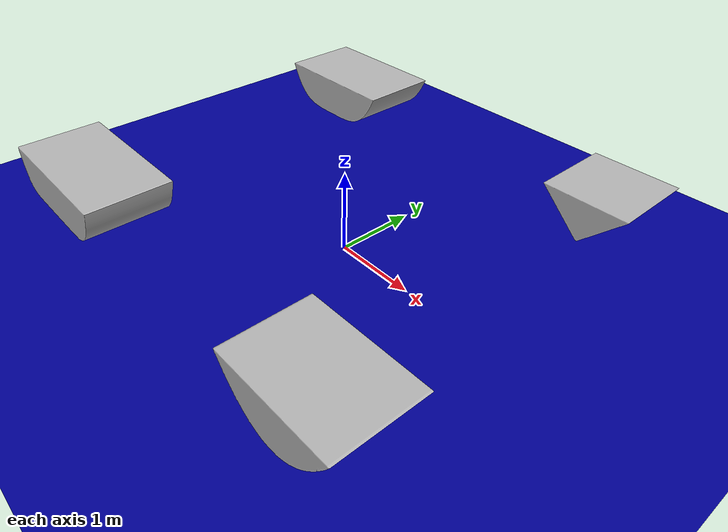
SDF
<?xml version="1.0" encoding="utf-8"?>
<!-- |    This document was autogenerated by xacro from buoyancy_plugin_demo.world.xacro | -->
<!-- |    EDITING THIS FILE BY HAND IS NOT RECOMMENDED                                 | -->
<!-- World containing buoyancy test models -->
<sdf version="1.6">
  <world name="buoyancy_test">
    <scene>
      <grid>false</grid>
      <origin_visual>false</origin_visual>
      <ambient>0.6 0.6 0.6 1</ambient>
      <background>0.8 0.8 0.8 1</background>
    </scene>
    <!-- A global light source -->
    <include>
      <uri>model://sun</uri>
    </include>
    <gui fullscreen="0">
      <camera name="user_camera">
        <pose frame="">4.84693 -4.51466 1.77033 0 0.275643 2.35619</pose>
        <view_controller>orbit</view_controller>
      </camera>
    </gui>
    <!-- water level for visual reference at z = 0-->
    <model name="plane">
      <static>true</static>
      <pose>0.8 0.8 0 0 0 0</pose>
      <link name="link">
        <visual name="visual">
          <geometry>
            <plane>
              <normal>0 0 1</normal>
              <size>20 20</size>
            </plane>
          </geometry>
          <material>
            <ambient>0.0 0.0 0.6 1</ambient>
          </material>
        </visual>
      </link>
    </model>
    <model name="shape_1_boat_mathematica">
	    <!-- AVS is about 92 degrees (as calculated by John's code) -->
      <pose>2 2 0.5 0 0 0</pose>
      <static>False</static>
      <link name="link">
        <visual name="visual">
          <geometry>
            <mesh>
		    <uri>model://bod/meshes/shape_1_boat_mathematica.stl</uri>
            </mesh>
          </geometry>
        </visual>
        <collision name="collision">
          <geometry>
            <mesh>
		    <uri>model://bod/meshes/shape_1_boat_mathematica.stl</uri>
            </mesh>
          </geometry>
        </collision>
        <inertial>
		<mass>62.44425</mass>
		<pose>0 0 0.333586 0 0 0</pose>
          <inertia>
            <ixx>6.0645</ixx>
            <ixy>0</ixy>
            <ixz>0</ixz>
            <iyy>3.466</iyy>
            <iyz>0</iyz>
            <izz>7.8047</izz>
          </inertia>
        </inertial>
      </link>
      <plugin filename="libbuoyancy_gazebo_plugin.so" name="BuoyancyPlugin">
        <fluid_density>1000</fluid_density>
        <fluid_level>0.0</fluid_level>
        <linear_drag>5</linear_drag>
        <angular_drag>2</angular_drag>
        <buoyancy name="buoyancy">
          <link_name>link</link_name>
          <geometry>
            <mesh>
		    <uri>model://bod/meshes/shape_1_boat_mathematica.stl</uri>
            </mesh>
          </geometry>
        </buoyancy>
      </plugin>
    </model>
    <model name="shape_2_boat_mathematica">
      <pose>2 -2 0.5 0 0 0</pose>
      <static>False</static>
      <link name="link">
        <visual name="visual">
          <geometry>
            <mesh>
		    <uri>model://bod/meshes/shape_2_boat_mathematica.stl</uri>
            </mesh>
          </geometry>
        </visual>
        <collision name="collision">
          <geometry>
            <mesh>
		    <uri>model://bod/meshes/shape_2_boat_mathematica.stl</uri>
            </mesh>
          </geometry>
        </collision>
        <inertial>
		<mass>117.787</mass>
		<pose>0 0 0.300031 0 0 0</pose>
          <inertia>
            <ixx>11.82975</ixx>
            <ixy>0</ixy>
            <ixz>0</ixz>
            <iyy>13.7865</iyy>
            <iyz>0</iyz>
            <izz>21.58125</izz>
          </inertia>
        </inertial>
      </link>
      <plugin filename="libbuoyancy_gazebo_plugin.so" name="BuoyancyPlugin">
        <fluid_density>1000</fluid_density>
        <fluid_level>0.0</fluid_level>
        <linear_drag>5</linear_drag>
        <angular_drag>2</angular_drag>
        <buoyancy name="buoyancy">
          <link_name>link</link_name>
          <geometry>
            <mesh>
		    <uri>model://bod/meshes/shape_2_boat_mathematica.stl</uri>
            </mesh>
          </geometry>
        </buoyancy>
      </plugin>
    </model>
    <model name="shape_4_boat_mathematica">
      <pose>-2 2 0.5 0 0 0</pose>
      <static>False</static>
      <link name="link">
        <visual name="visual">
          <geometry>
            <mesh>
		    <uri>model://bod/meshes/shape_4_boat_mathematica.stl</uri>
            </mesh>
          </geometry>
        </visual>
        <collision name="collision">
          <geometry>
            <mesh>
		    <uri>model://bod/meshes/shape_4_boat_mathematica.stl</uri>
            </mesh>
          </geometry>
        </collision>
        <inertial>
		<mass>168.1105</mass>
		<pose>0 0 0.277797 0 0 0</pose>
          <inertia>
            <ixx>17.1965</ixx>
            <ixy>0</ixy>
            <ixz>0</ixz>
            <iyy>31.47625</iyy>
            <iyz>0</iyz>
            <izz>42.29</izz>
          </inertia>
        </inertial>
      </link>
      <plugin filename="libbuoyancy_gazebo_plugin.so" name="BuoyancyPlugin">
        <fluid_density>1000</fluid_density>
        <fluid_level>0.0</fluid_level>
        <linear_drag>5</linear_drag>
        <angular_drag>2</angular_drag>
        <buoyancy name="buoyancy">
          <link_name>link</link_name>
          <geometry>
            <mesh>
		    <uri>model://bod/meshes/shape_4_boat_mathematica.stl</uri>
            </mesh>
          </geometry>
        </buoyancy>
      </plugin>
    </model>
    <model name="shape_8_boat_mathematica">
      <pose>-2 -2 0.5 0 0 0</pose>
      <static>False</static>
      <link name="link">
        <visual name="visual">
          <geometry>
            <mesh>
		    <uri>model://bod/meshes/shape_8_boat_mathematica.stl</uri>
            </mesh>
          </geometry>
        </visual>
        <collision name="collision">
          <geometry>
            <mesh>
		    <uri>model://bod/meshes/shape_8_boat_mathematica.stl</uri>
            </mesh>
          </geometry>
        </collision>
        <inertial>
		<mass>203.699</mass>
		<pose>0 0 0.264741 0 0 0</pose>
          <inertia>
            <ixx>21.0285</ixx>
            <ixy>0</ixy>
            <ixz>0</ixz>
            <iyy>50.74775</iyy>
            <iyz>0</iyz>
            <izz>63.66025</izz>
          </inertia>
        </inertial>
      </link>
      <plugin filename="libbuoyancy_gazebo_plugin.so" name="BuoyancyPlugin">
        <fluid_density>1000</fluid_density>
        <fluid_level>0.0</fluid_level>
        <linear_drag>5</linear_drag>
        <angular_drag>2</angular_drag>
        <buoyancy name="buoyancy">
          <link_name>link</link_name>
          <geometry>
            <mesh>
		    <uri>model://bod/meshes/shape_8_boat_mathematica.stl</uri>
            </mesh>
          </geometry>
        </buoyancy>
      </plugin>
    </model>
    <!-- go a little faster -->
  <physics type='ode'>
    <max_step_size>0.04000</max_step_size>
    <real_time_factor>1.000000</real_time_factor>
    <real_time_update_rate>25.000000</real_time_update_rate>
    <gravity>0.000000 0.000000 -9.800000</gravity>
  </physics>
</world>
</sdf>
